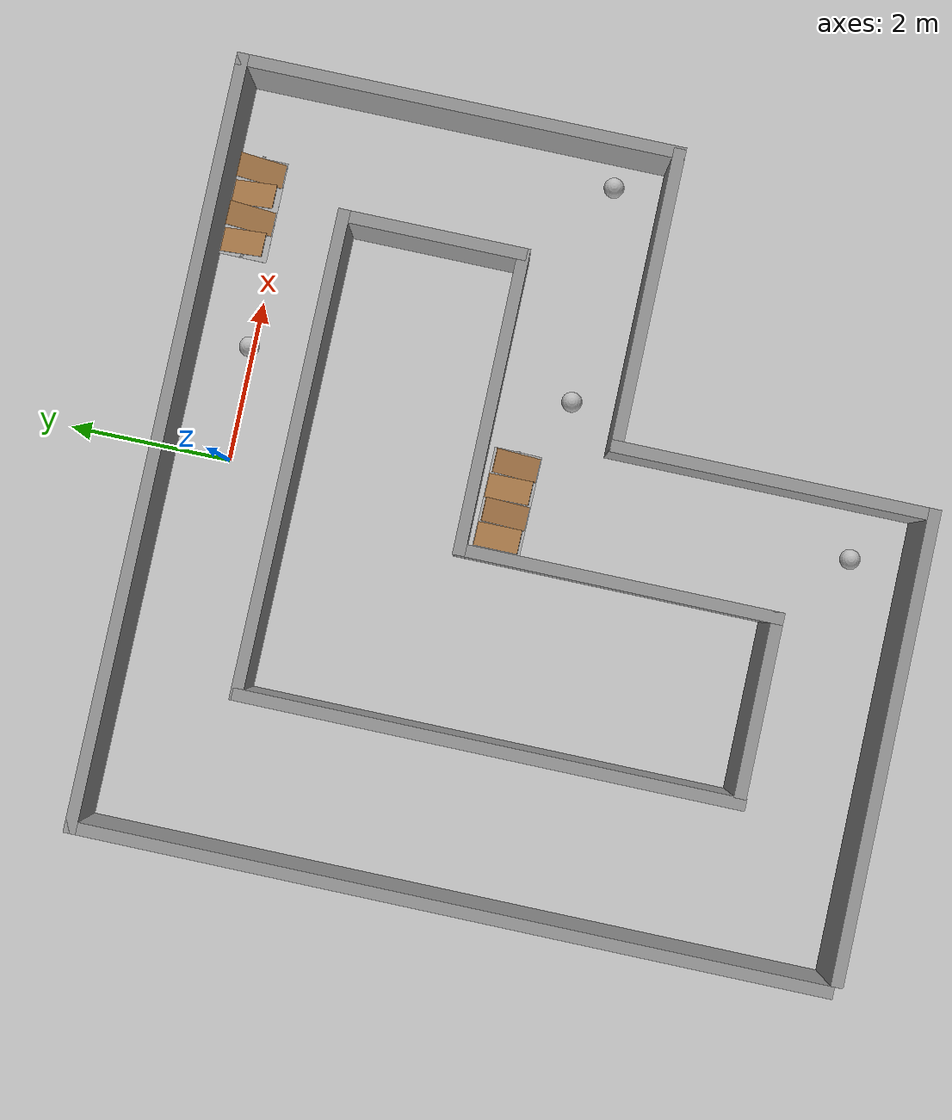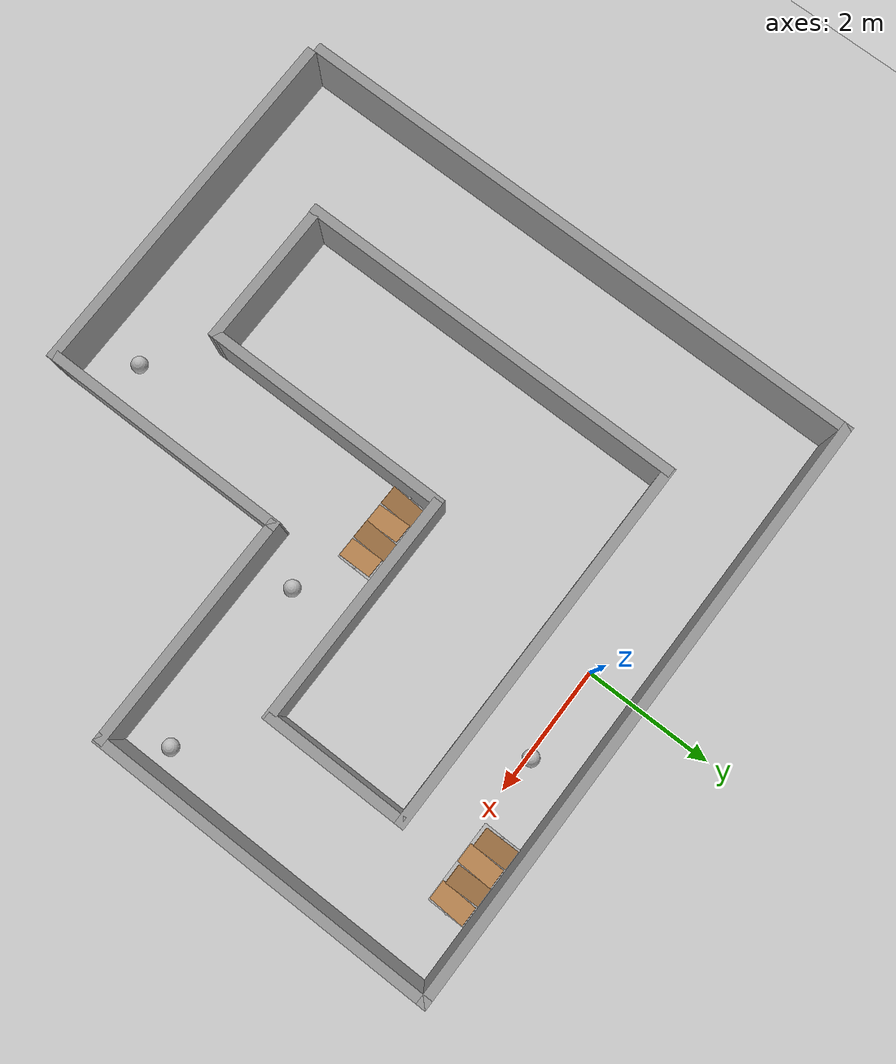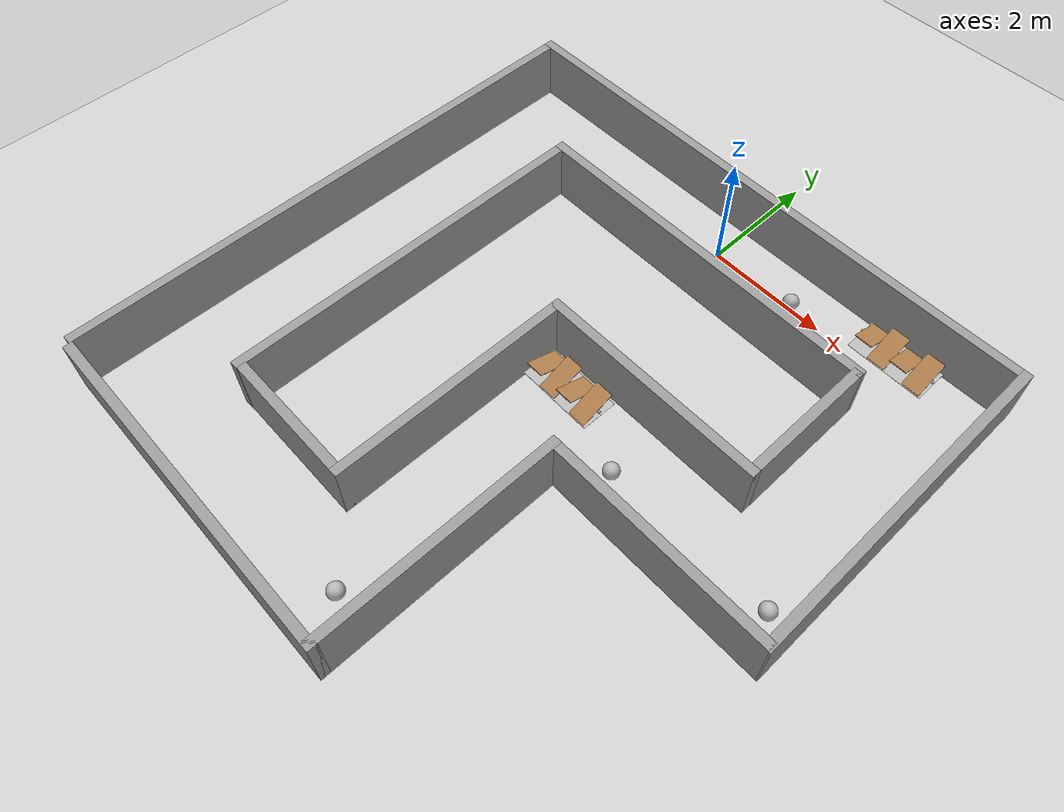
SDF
<sdf version="1.6">
 <world name="default">
  <model name="ground_plane">
   <static>1</static>
   <link name="link">
    <collision name="collision">
     <geometry><plane><normal>0 0 1</normal><size>100 100</size></plane></geometry>
     <surface><friction><ode><mu>100</mu><mu2>50</mu2></ode></friction></surface>
    </collision>
    <visual name="visual">
     <cast_shadows>0</cast_shadows>
     <geometry><plane><normal>0 0 1</normal><size>100 100</size></plane></geometry>
     <material>
      <script><uri>file://media/materials/scripts/gazebo.material</uri><name>Gazebo/Grey</name></script>
     </material>
    </visual>
    <velocity_decay><linear>0</linear><angular>0</angular></velocity_decay>
   </link>
  </model>
  <model name="Circuit_ql_2">
   <pose>1e-06 -3.85 0 0 -0 1.567</pose>
   <link name="Wall_0">
    <collision name="Wall_0_Collision">
     <geometry><box><size>5.75 0.15 1</size></box></geometry>
     <pose>0 0 0.5 0 -0 0</pose>
    </collision>
    <visual name="Wall_0_Visual">
     <pose>0 0 0.5 0 -0 0</pose>
     <geometry><box><size>5.75 0.15 1</size></box></geometry>
     <material>
      <script><uri>file://media/materials/scripts/gazebo.material</uri><name>Gazebo/Grey</name></script>
      <ambient>1 1 1 1</ambient>
     </material>
    </visual>
    <pose>-4.6 1.725 0 0 0 -1.5708</pose>
   </link>
   <link name="Wall_1">
    <collision name="Wall_1_Collision">
     <geometry><box><size>4 0.15 1</size></box></geometry>
     <pose>0 0 0.5 0 -0 0</pose>
    </collision>
    <visual name="Wall_1_Visual">
     <pose>0 0 0.5 0 -0 0</pose>
     <geometry><box><size>4 0.15 1</size></box></geometry>
     <material>
      <script><uri>file://media/materials/scripts/gazebo.material</uri><name>Gazebo/Grey</name></script>
      <ambient>1 1 1 1</ambient>
     </material>
    </visual>
    <pose>-2.675 -1.075 0 0 -0 0</pose>
   </link>
   <link name="Wall_11">
    <collision name="Wall_11_Collision">
     <geometry><box><size>2.25 0.15 1</size></box></geometry>
     <pose>0 0 0.5 0 -0 0</pose>
    </collision>
    <visual name="Wall_11_Visual">
     <pose>0 0 0.5 0 -0 0</pose>
     <geometry><box><size>2.25 0.15 1</size></box></geometry>
     <material>
      <script><uri>file://media/materials/scripts/gazebo.material</uri><name>Gazebo/Grey</name></script>
      <ambient>1 1 1 1</ambient>
     </material>
    </visual>
    <pose>-3.036 1.559 0 0 0 -1.5708</pose>
   </link>
   <link name="Wall_12">
    <collision name="Wall_12_Collision">
     <geometry><box><size>4 0.15 1</size></box></geometry>
     <pose>0 0 0.5 0 -0 0</pose>
    </collision>
    <visual name="Wall_12_Visual">
     <pose>0 0 0.5 0 -0 0</pose>
     <geometry><box><size>4 0.15 1</size></box></geometry>
     <material>
      <script><uri>file://media/materials/scripts/gazebo.material</uri><name>Gazebo/Grey</name></script>
      <ambient>1 1 1 1</ambient>
     </material>
    </visual>
    <pose>-1.111 0.509 0 0 -0 0</pose>
   </link>
   <link name="Wall_13">
    <collision name="Wall_13_Collision">
     <geometry><box><size>3.75 0.15 1</size></box></geometry>
     <pose>0 0 0.5 0 -0 0</pose>
    </collision>
    <visual name="Wall_13_Visual">
     <pose>0 0 0.5 0 -0 0</pose>
     <geometry><box><size>3.75 0.15 1</size></box></geometry>
     <material>
      <script><uri>file://media/materials/scripts/gazebo.material</uri><name>Gazebo/Grey</name></script>
      <ambient>1 1 1 1</ambient>
     </material>
    </visual>
    <pose>0.814 -1.291 0 0 0 -1.5708</pose>
   </link>
   <link name="Wall_14">
    <collision name="Wall_14_Collision">
     <geometry><box><size>2.25 0.15 1</size></box></geometry>
     <pose>0 0 0.5 0 -0 0</pose>
    </collision>
    <visual name="Wall_14_Visual">
     <pose>0 0 0.5 0 -0 0</pose>
     <geometry><box><size>2.25 0.15 1</size></box></geometry>
     <material>
      <script><uri>file://media/materials/scripts/gazebo.material</uri><name>Gazebo/Grey</name></script>
      <ambient>1 1 1 1</ambient>
     </material>
    </visual>
    <pose>1.9 -3.091 0 0 -0 0</pose>
   </link>
   <link name="Wall_15">
    <collision name="Wall_15_Collision">
     <geometry><box><size>5.98502 0.15 1</size></box></geometry>
     <pose>0 0 0.5 0 -0 0</pose>
    </collision>
    <visual name="Wall_15_Visual">
     <pose>0 0 0.5 0 -0 0</pose>
     <geometry><box><size>5.98502 0.15 1</size></box></geometry>
     <material>
      <script><uri>file://media/materials/scripts/gazebo.material</uri><name>Gazebo/Grey</name></script>
      <ambient>1 1 1 1</ambient>
     </material>
    </visual>
    <pose>3.0215 -0.1735 0 0 -0 1.56823</pose>
   </link>
   <link name="Wall_16">
    <collision name="Wall_16_Collision">
     <geometry><box><size>6.2 0.15 1</size></box></geometry>
     <pose>0 0 0.5 0 -0 0</pose>
    </collision>
    <visual name="Wall_16_Visual">
     <pose>0 0 0.5 0 -0 0</pose>
     <geometry><box><size>6.2 0.15 1</size></box></geometry>
     <material>
      <script><uri>file://media/materials/scripts/gazebo.material</uri><name>Gazebo/Grey</name></script>
      <ambient>1 1 1 1</ambient>
     </material>
    </visual>
    <pose>-0.02 2.744 0 0 -0 3.14159</pose>
   </link>
   <link name="Wall_2">
    <collision name="Wall_2_Collision">
     <geometry><box><size>3.7 0.15 1</size></box></geometry>
     <pose>0 0 0.5 0 -0 0</pose>
    </collision>
    <visual name="Wall_2_Visual">
     <pose>0 0 0.5 0 -0 0</pose>
     <geometry><box><size>3.7 0.15 1</size></box></geometry>
     <material>
      <script><uri>file://media/materials/scripts/gazebo.material</uri><name>Gazebo/Grey</name></script>
      <ambient>1 1 1 1</ambient>
     </material>
    </visual>
    <pose>-0.75 -2.875 0 0 0 -1.5708</pose>
   </link>
   <link name="Wall_3">
    <collision name="Wall_3_Collision">
     <geometry><box><size>5.5 0.15 1</size></box></geometry>
     <pose>0 0 0.5 0 -0 0</pose>
    </collision>
    <visual name="Wall_3_Visual">
     <pose>0 0 0.5 0 -0 0</pose>
     <geometry><box><size>5.5 0.15 1</size></box></geometry>
     <material>
      <script><uri>file://media/materials/scripts/gazebo.material</uri><name>Gazebo/Grey</name></script>
      <ambient>1 1 1 1</ambient>
     </material>
    </visual>
    <pose>1.925 -4.675 0 0 -0 0</pose>
   </link>
   <link name="Wall_7">
    <collision name="Wall_7_Collision">
     <geometry><box><size>9.5 0.15 1</size></box></geometry>
     <pose>0 0 0.5 0 -0 0</pose>
    </collision>
    <visual name="Wall_7_Visual">
     <pose>0 0 0.5 0 -0 0</pose>
     <geometry><box><size>9.5 0.15 1</size></box></geometry>
     <material>
      <script><uri>file://media/materials/scripts/gazebo.material</uri><name>Gazebo/Grey</name></script>
      <ambient>1 1 1 1</ambient>
     </material>
    </visual>
    <pose>4.6 0 0 0 -0 1.5708</pose>
   </link>
   <link name="Wall_9">
    <collision name="Wall_9_Collision">
     <geometry><box><size>9.25 0.15 1</size></box></geometry>
     <pose>0 0 0.5 0 -0 0</pose>
    </collision>
    <visual name="Wall_9_Visual">
     <pose>0 0 0.5 0 -0 0</pose>
     <geometry><box><size>9.25 0.15 1</size></box></geometry>
     <material>
      <script><uri>file://media/materials/scripts/gazebo.material</uri><name>Gazebo/Grey</name></script>
      <ambient>1 1 1 1</ambient>
     </material>
    </visual>
    <pose>0.05 4.675 0 0 -0 3.14159</pose>
   </link>
   <static>1</static>
  </model>
  <model name="frc2016_ball_2">
   <pose>1.57842 -3.99592 0.127 0 -0 0</pose>
   <link name="link">
    <inertial>
     <mass>0.213</mass>
     <inertia>
      <ixx>0.00322667</ixx>
      <ixy>0</ixy>
      <ixz>0</ixz>
      <iyy>0.00322667</iyy>
      <iyz>0</iyz>
      <izz>0.00322667</izz>
     </inertia>
    </inertial>
    <visual name="visual"><geometry><sphere><radius>0.127</radius></sphere></geometry></visual>
    <collision name="collision">
     <geometry><sphere><radius>0.127</radius></sphere></geometry>
     <surface>
      <bounce><restitution_coefficient>0.15937</restitution_coefficient><threshold>0</threshold></bounce>
      <contact><ode><max_vel>100</max_vel><min_depth>0.001</min_depth></ode></contact>
     </surface>
    </collision>
   </link>
  </model>
  <model name="frc2016_chevaldefrise_0_clone">
   <link name="base">
    <inertial>
     <mass>10</mass>
     <pose>0 0 0.15672 0 -0 0</pose>
     <inertia><ixx>0.380221</ixx><ixy>0</ixy><ixz>0</ixz><iyy>1.43365</iyy><iyz>0</iyz><izz>1.64745</izz></inertia>
    </inertial>
    <visual name="platform">
     <pose>0 0 0.06968 0 -0 0</pose>
     <geometry><box><size>1.27 0.5969 0.003175</size></box></geometry>
    </visual>
    <collision name="platform">
     <pose>0 0 0.06968 0 -0 0</pose>
     <geometry><box><size>1.27 0.5969 0.003175</size></box></geometry>
    </collision>
    <visual name="bar">
     <pose>0 0 0.16855 0 1.5707 0</pose>
     <geometry><cylinder><radius>0.02108</radius><length>1.273</length></cylinder></geometry>
    </visual>
    <collision name="bar">
     <pose>0 0 0.16855 0 1.5707 0</pose>
     <geometry><cylinder><radius>0.02108</radius><length>1.27</length></cylinder></geometry>
    </collision>
    <visual name="castor1">
     <pose>-0.45653 -0.16581 0.03175 0 -0 0</pose>
     <geometry><sphere><radius>0.03175</radius></sphere></geometry>
    </visual>
    <collision name="castor1">
     <pose>-0.45653 -0.16581 0.03175 0 -0 0</pose>
     <geometry><sphere><radius>0.03175</radius></sphere></geometry>
    </collision>
    <visual name="castor2">
     <pose>-0.27855 0.21408 0.03175 0 -0 0</pose>
     <geometry><sphere><radius>0.03175</radius></sphere></geometry>
    </visual>
    <collision name="castor2">
     <pose>-0.27855 0.21408 0.03175 0 -0 0</pose>
     <geometry><sphere><radius>0.03175</radius></sphere></geometry>
    </collision>
    <visual name="castor3">
     <pose>0.28191 0.21419 0.03175 0 -0 0</pose>
     <geometry><sphere><radius>0.03175</radius></sphere></geometry>
    </visual>
    <collision name="castor3">
     <pose>0.28191 0.21419 0.03175 0 -0 0</pose>
     <geometry><sphere><radius>0.03175</radius></sphere></geometry>
    </collision>
    <visual name="castor4">
     <pose>0.45965 -0.16602 0.03175 0 -0 0</pose>
     <geometry><sphere><radius>0.03175</radius></sphere></geometry>
    </visual>
    <collision name="castor4">
     <pose>0.45965 -0.16602 0.03175 0 -0 0</pose>
     <geometry><sphere><radius>0.03175</radius></sphere></geometry>
    </collision>
   </link>
   <link name="slant1">
    <pose>-0.4572 0.01307 0.1997 -0.39732 0 0</pose>
    <inertial>
     <pose>0 0.1 0 0 -0 0</pose>
     <mass>2</mass>
     <inertia>
      <ixx>0.0606857</ixx>
      <ixy>0</ixy>
      <ixz>0</ixz>
      <iyy>0.0148723</iyy>
      <iyz>0</iyz>
      <izz>0.0755042</izz>
     </inertia>
    </inertial>
    <visual name="visual">
     <geometry><box><size>0.29845 0.593285 0.0127</size></box></geometry>
     <material><script><name>Gazebo/WoodFloor</name><uri>__default__</uri></script></material>
    </visual>
    <collision name="collision"><geometry><box><size>0.29845 0.593285 0.0127</size></box></geometry></collision>
   </link>
   <link name="slant2">
    <pose>-0.1524 -0.01307 0.1997 0.39732 -0 0</pose>
    <inertial>
     <mass>2</mass>
     <pose>0 -0.1 0 0 -0 0</pose>
     <inertia>
      <ixx>0.0606857</ixx>
      <ixy>0</ixy>
      <ixz>0</ixz>
      <iyy>0.0148723</iyy>
      <iyz>0</iyz>
      <izz>0.0755042</izz>
     </inertia>
    </inertial>
    <visual name="visual">
     <geometry><box><size>0.29845 0.593285 0.0127</size></box></geometry>
     <material><script><name>Gazebo/WoodFloor</name><uri>__default__</uri></script></material>
    </visual>
    <collision name="collision"><geometry><box><size>0.29845 0.593285 0.0127</size></box></geometry></collision>
   </link>
   <link name="slant3">
    <pose>0.1524 0.01307 0.1997 -0.39732 0 0</pose>
    <inertial>
     <pose>0 0.1 0 0 -0 0</pose>
     <mass>2</mass>
     <inertia>
      <ixx>0.0606857</ixx>
      <ixy>0</ixy>
      <ixz>0</ixz>
      <iyy>0.0148723</iyy>
      <iyz>0</iyz>
      <izz>0.0755042</izz>
     </inertia>
    </inertial>
    <visual name="visual">
     <geometry><box><size>0.29845 0.593285 0.0127</size></box></geometry>
     <material><script><name>Gazebo/WoodFloor</name><uri>__default__</uri></script></material>
    </visual>
    <collision name="collision"><geometry><box><size>0.29845 0.593285 0.0127</size></box></geometry></collision>
   </link>
   <link name="slant4">
    <pose>0.4572 -0.01307 0.1997 0.39732 -0 0</pose>
    <inertial>
     <pose>0 -0.1 0 0 -0 0</pose>
     <mass>2</mass>
     <inertia>
      <ixx>0.0606857</ixx>
      <ixy>0</ixy>
      <ixz>0</ixz>
      <iyy>0.0148723</iyy>
      <iyz>0</iyz>
      <izz>0.0755042</izz>
     </inertia>
    </inertial>
    <visual name="visual">
     <geometry><box><size>0.29845 0.593285 0.0127</size></box></geometry>
     <material><script><name>Gazebo/WoodFloor</name><uri>__default__</uri></script></material>
    </visual>
    <collision name="collision"><geometry><box><size>0.29845 0.593285 0.0127</size></box></geometry></collision>
   </link>
   <joint name="slant1_joint" type="revolute">
    <parent>base</parent>
    <child>slant1</child>
    <axis>
     <xyz>1 0 0</xyz>
     <limit><lower>0</lower><upper>1.5707</upper></limit>
     <use_parent_model_frame>0</use_parent_model_frame>
     <dynamics><spring_reference>0</spring_reference><spring_stiffness>0</spring_stiffness></dynamics>
    </axis>
   </joint>
   <joint name="slant2_joint" type="revolute">
    <parent>base</parent>
    <child>slant2</child>
    <axis>
     <xyz>1 0 0</xyz>
     <limit><lower>-1.5707</lower><upper>0</upper></limit>
     <use_parent_model_frame>0</use_parent_model_frame>
     <dynamics><spring_reference>0</spring_reference><spring_stiffness>0</spring_stiffness></dynamics>
    </axis>
   </joint>
   <joint name="slant3_joint" type="revolute">
    <parent>base</parent>
    <child>slant3</child>
    <axis>
     <xyz>1 0 0</xyz>
     <limit><lower>0</lower><upper>1.5707</upper></limit>
     <use_parent_model_frame>0</use_parent_model_frame>
     <dynamics><spring_reference>0</spring_reference><spring_stiffness>0</spring_stiffness></dynamics>
    </axis>
   </joint>
   <joint name="slant4_joint" type="revolute">
    <parent>base</parent>
    <child>slant4</child>
    <axis>
     <xyz>1 0 0</xyz>
     <limit><lower>-1.5707</lower><upper>0</upper></limit>
     <use_parent_model_frame>0</use_parent_model_frame>
     <dynamics><spring_reference>0</spring_reference><spring_stiffness>0</spring_stiffness></dynamics>
    </axis>
   </joint>
   <pose>3.12681 0.361573 -2e-06 1.6e-05 -6e-06 -0.008797</pose>
  </model>
  <model name="frc2016_ball_3">
   <pose>1.42417 0.041371 0.127 0 -0 0</pose>
   <link name="link">
    <inertial>
     <mass>0.213</mass>
     <inertia>
      <ixx>0.00322667</ixx>
      <ixy>0</ixy>
      <ixz>0</ixz>
      <iyy>0.00322667</iyy>
      <iyz>0</iyz>
      <izz>0.00322667</izz>
     </inertia>
    </inertial>
    <visual name="visual"><geometry><sphere><radius>0.127</radius></sphere></geometry></visual>
    <collision name="collision">
     <geometry><sphere><radius>0.127</radius></sphere></geometry>
     <surface>
      <bounce><restitution_coefficient>0.15937</restitution_coefficient><threshold>0</threshold></bounce>
      <contact><ode><max_vel>100</max_vel><min_depth>0.001</min_depth></ode></contact>
     </surface>
    </collision>
   </link>
  </model>
  <model name="frc2016_ball_5">
   <pose>0.38902 -7.73872 0.127 0 -0 0</pose>
   <link name="link">
    <inertial>
     <mass>0.213</mass>
     <inertia>
      <ixx>0.00322667</ixx>
      <ixy>0</ixy>
      <ixz>0</ixz>
      <iyy>0.00322667</iyy>
      <iyz>0</iyz>
      <izz>0.00322667</izz>
     </inertia>
    </inertial>
    <visual name="visual"><geometry><sphere><radius>0.127</radius></sphere></geometry></visual>
    <collision name="collision">
     <geometry><sphere><radius>0.127</radius></sphere></geometry>
     <surface>
      <bounce><restitution_coefficient>0.15937</restitution_coefficient><threshold>0</threshold></bounce>
      <contact><ode><max_vel>100</max_vel><min_depth>0.001</min_depth></ode></contact>
     </surface>
    </collision>
   </link>
  </model>
  <model name="frc2016_ball_7">
   <pose>4.29078 -3.96106 0.127 0 -0 0</pose>
   <link name="link">
    <inertial>
     <mass>0.213</mass>
     <inertia>
      <ixx>0.00322667</ixx>
      <ixy>0</ixy>
      <ixz>0</ixz>
      <iyy>0.00322667</iyy>
      <iyz>0</iyz>
      <izz>0.00322667</izz>
     </inertia>
    </inertial>
    <visual name="visual"><geometry><sphere><radius>0.127</radius></sphere></geometry></visual>
    <collision name="collision">
     <geometry><sphere><radius>0.127</radius></sphere></geometry>
     <surface>
      <bounce><restitution_coefficient>0.15937</restitution_coefficient><threshold>0</threshold></bounce>
      <contact><ode><max_vel>100</max_vel><min_depth>0.001</min_depth></ode></contact>
     </surface>
    </collision>
   </link>
  </model>
  <model name="frc2016_chevaldefrise_1">
   <link name="base">
    <inertial>
     <mass>10</mass>
     <pose>0 0 0.15672 0 -0 0</pose>
     <inertia><ixx>0.380221</ixx><ixy>0</ixy><ixz>0</ixz><iyy>1.43365</iyy><iyz>0</iyz><izz>1.64745</izz></inertia>
    </inertial>
    <visual name="platform">
     <pose>0 0 0.06968 0 -0 0</pose>
     <geometry><box><size>1.27 0.5969 0.003175</size></box></geometry>
    </visual>
    <collision name="platform">
     <pose>0 0 0.06968 0 -0 0</pose>
     <geometry><box><size>1.27 0.5969 0.003175</size></box></geometry>
    </collision>
    <visual name="bar">
     <pose>0 0 0.16855 0 1.5707 0</pose>
     <geometry><cylinder><radius>0.02108</radius><length>1.273</length></cylinder></geometry>
    </visual>
    <collision name="bar">
     <pose>0 0 0.16855 0 1.5707 0</pose>
     <geometry><cylinder><radius>0.02108</radius><length>1.27</length></cylinder></geometry>
    </collision>
    <visual name="castor1">
     <pose>-0.45653 -0.16581 0.03175 0 -0 0</pose>
     <geometry><sphere><radius>0.03175</radius></sphere></geometry>
    </visual>
    <collision name="castor1">
     <pose>-0.45653 -0.16581 0.03175 0 -0 0</pose>
     <geometry><sphere><radius>0.03175</radius></sphere></geometry>
    </collision>
    <visual name="castor2">
     <pose>-0.27855 0.21408 0.03175 0 -0 0</pose>
     <geometry><sphere><radius>0.03175</radius></sphere></geometry>
    </visual>
    <collision name="castor2">
     <pose>-0.27855 0.21408 0.03175 0 -0 0</pose>
     <geometry><sphere><radius>0.03175</radius></sphere></geometry>
    </collision>
    <visual name="castor3">
     <pose>0.28191 0.21419 0.03175 0 -0 0</pose>
     <geometry><sphere><radius>0.03175</radius></sphere></geometry>
    </visual>
    <collision name="castor3">
     <pose>0.28191 0.21419 0.03175 0 -0 0</pose>
     <geometry><sphere><radius>0.03175</radius></sphere></geometry>
    </collision>
    <visual name="castor4">
     <pose>0.45965 -0.16602 0.03175 0 -0 0</pose>
     <geometry><sphere><radius>0.03175</radius></sphere></geometry>
    </visual>
    <collision name="castor4">
     <pose>0.45965 -0.16602 0.03175 0 -0 0</pose>
     <geometry><sphere><radius>0.03175</radius></sphere></geometry>
    </collision>
   </link>
   <link name="slant1">
    <pose>-0.4572 0.01307 0.1997 -0.39732 0 0</pose>
    <inertial>
     <pose>0 0.1 0 0 -0 0</pose>
     <mass>2</mass>
     <inertia>
      <ixx>0.0606857</ixx>
      <ixy>0</ixy>
      <ixz>0</ixz>
      <iyy>0.0148723</iyy>
      <iyz>0</iyz>
      <izz>0.0755042</izz>
     </inertia>
    </inertial>
    <visual name="visual">
     <geometry><box><size>0.29845 0.593285 0.0127</size></box></geometry>
     <material><script><name>Gazebo/WoodFloor</name><uri>__default__</uri></script></material>
    </visual>
    <collision name="collision"><geometry><box><size>0.29845 0.593285 0.0127</size></box></geometry></collision>
   </link>
   <link name="slant2">
    <pose>-0.1524 -0.01307 0.1997 0.39732 -0 0</pose>
    <inertial>
     <mass>2</mass>
     <pose>0 -0.1 0 0 -0 0</pose>
     <inertia>
      <ixx>0.0606857</ixx>
      <ixy>0</ixy>
      <ixz>0</ixz>
      <iyy>0.0148723</iyy>
      <iyz>0</iyz>
      <izz>0.0755042</izz>
     </inertia>
    </inertial>
    <visual name="visual">
     <geometry><box><size>0.29845 0.593285 0.0127</size></box></geometry>
     <material><script><name>Gazebo/WoodFloor</name><uri>__default__</uri></script></material>
    </visual>
    <collision name="collision"><geometry><box><size>0.29845 0.593285 0.0127</size></box></geometry></collision>
   </link>
   <link name="slant3">
    <pose>0.1524 0.01307 0.1997 -0.39732 0 0</pose>
    <inertial>
     <pose>0 0.1 0 0 -0 0</pose>
     <mass>2</mass>
     <inertia>
      <ixx>0.0606857</ixx>
      <ixy>0</ixy>
      <ixz>0</ixz>
      <iyy>0.0148723</iyy>
      <iyz>0</iyz>
      <izz>0.0755042</izz>
     </inertia>
    </inertial>
    <visual name="visual">
     <geometry><box><size>0.29845 0.593285 0.0127</size></box></geometry>
     <material><script><name>Gazebo/WoodFloor</name><uri>__default__</uri></script></material>
    </visual>
    <collision name="collision"><geometry><box><size>0.29845 0.593285 0.0127</size></box></geometry></collision>
   </link>
   <link name="slant4">
    <pose>0.4572 -0.01307 0.1997 0.39732 -0 0</pose>
    <inertial>
     <pose>0 -0.1 0 0 -0 0</pose>
     <mass>2</mass>
     <inertia>
      <ixx>0.0606857</ixx>
      <ixy>0</ixy>
      <ixz>0</ixz>
      <iyy>0.0148723</iyy>
      <iyz>0</iyz>
      <izz>0.0755042</izz>
     </inertia>
    </inertial>
    <visual name="visual">
     <geometry><box><size>0.29845 0.593285 0.0127</size></box></geometry>
     <material><script><name>Gazebo/WoodFloor</name><uri>__default__</uri></script></material>
    </visual>
    <collision name="collision"><geometry><box><size>0.29845 0.593285 0.0127</size></box></geometry></collision>
   </link>
   <joint name="slant1_joint" type="revolute">
    <parent>base</parent>
    <child>slant1</child>
    <axis>
     <xyz>1 0 0</xyz>
     <limit><lower>0</lower><upper>1.5707</upper></limit>
     <use_parent_model_frame>0</use_parent_model_frame>
     <dynamics><spring_reference>0</spring_reference><spring_stiffness>0</spring_stiffness></dynamics>
    </axis>
   </joint>
   <joint name="slant2_joint" type="revolute">
    <parent>base</parent>
    <child>slant2</child>
    <axis>
     <xyz>1 0 0</xyz>
     <limit><lower>-1.5707</lower><upper>0</upper></limit>
     <use_parent_model_frame>0</use_parent_model_frame>
     <dynamics><spring_reference>0</spring_reference><spring_stiffness>0</spring_stiffness></dynamics>
    </axis>
   </joint>
   <joint name="slant3_joint" type="revolute">
    <parent>base</parent>
    <child>slant3</child>
    <axis>
     <xyz>1 0 0</xyz>
     <limit><lower>0</lower><upper>1.5707</upper></limit>
     <use_parent_model_frame>0</use_parent_model_frame>
     <dynamics><spring_reference>0</spring_reference><spring_stiffness>0</spring_stiffness></dynamics>
    </axis>
   </joint>
   <joint name="slant4_joint" type="revolute">
    <parent>base</parent>
    <child>slant4</child>
    <axis>
     <xyz>1 0 0</xyz>
     <limit><lower>-1.5707</lower><upper>0</upper></limit>
     <use_parent_model_frame>0</use_parent_model_frame>
     <dynamics><spring_reference>0</spring_reference><spring_stiffness>0</spring_stiffness></dynamics>
    </axis>
   </joint>
   <pose>0.206113 -3.47046 -1e-06 2e-06 1e-06 -0.016281</pose>
  </model>
 </world>
</sdf>
